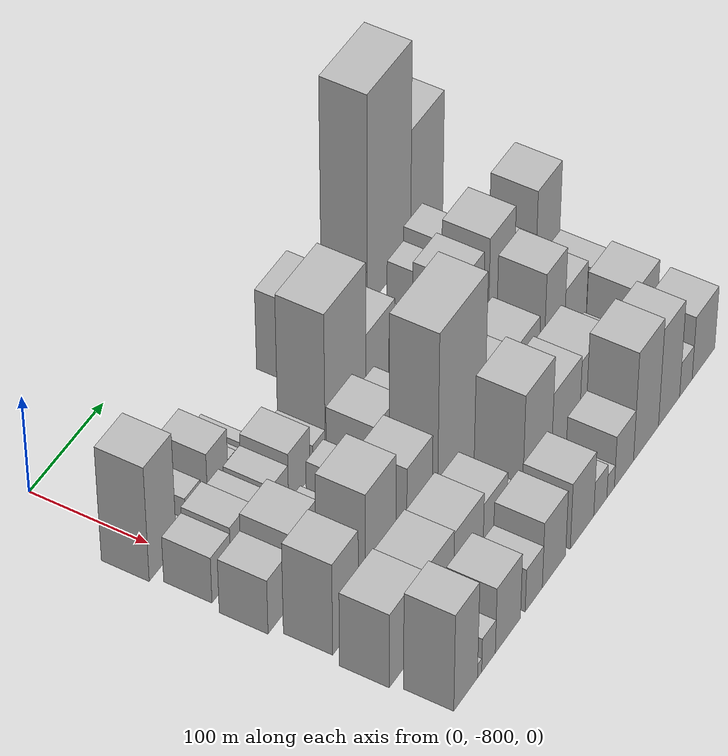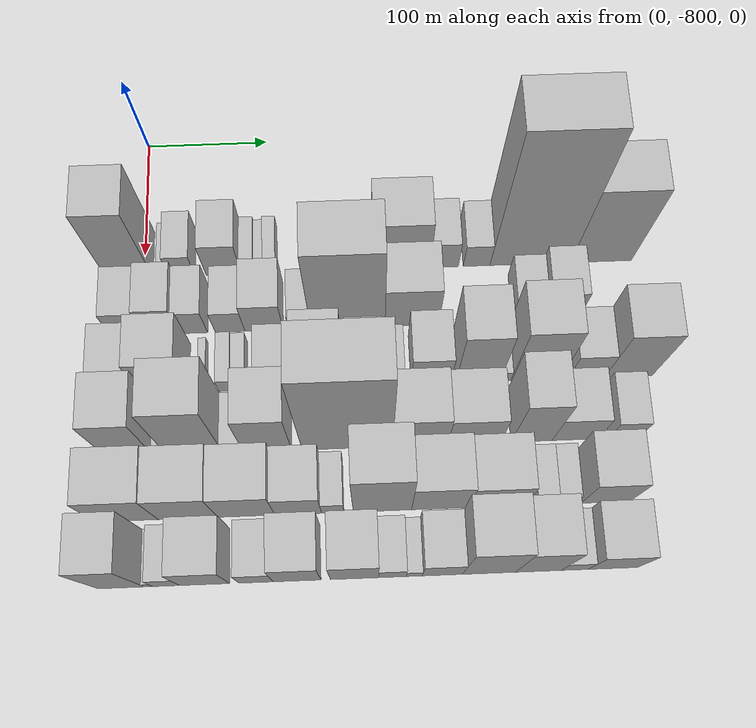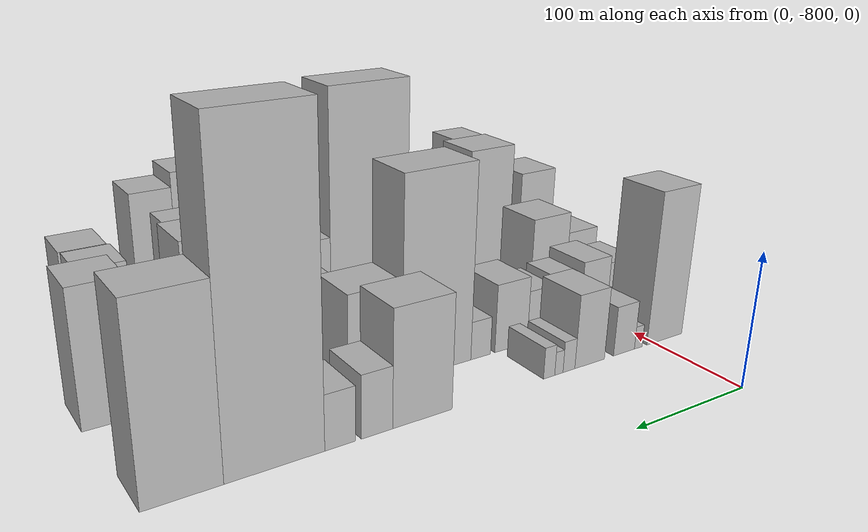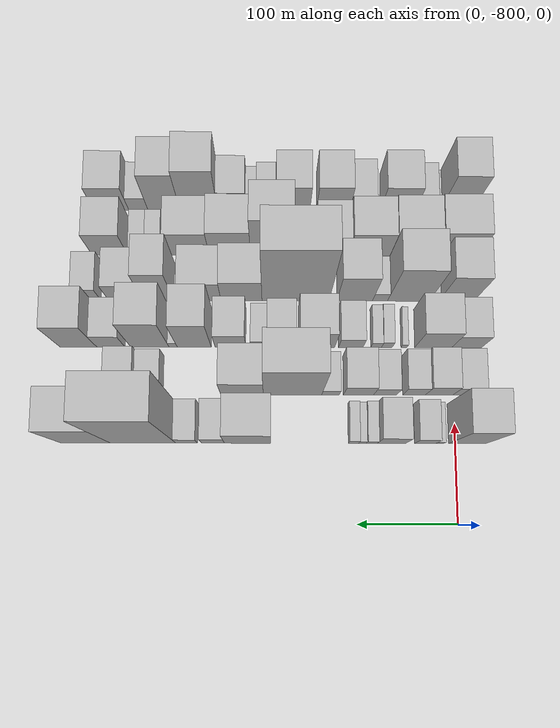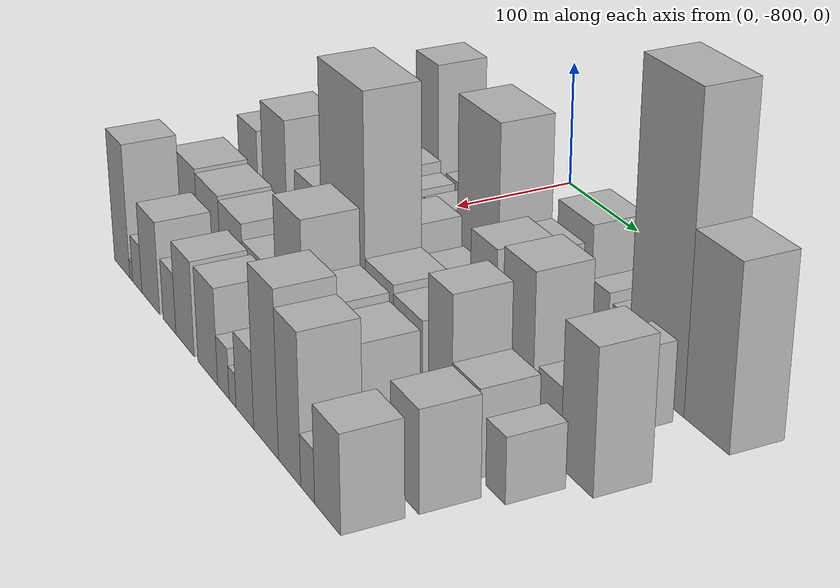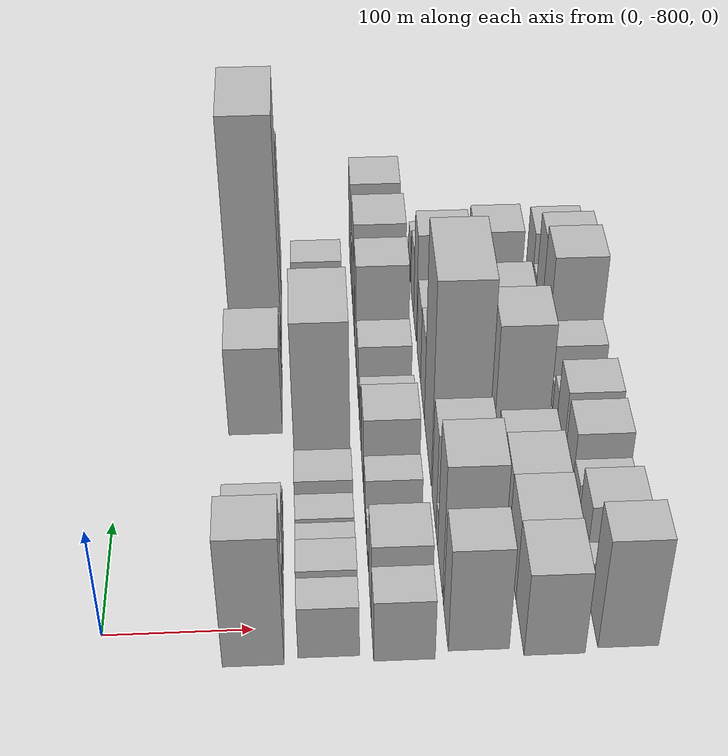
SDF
<sdf version="1.6">
 <world name="default">
  <model name="building_1">
   <static>1</static>
   <pose>100.0000 -811.4164 0 0.000000 0.000000 0.000000</pose>
   <link name="link">
    <pose>0 0 60.00 0 0 0</pose>
    <collision name="collision"><geometry><box><size>40.0000 37.1672 120.0000</size></box></geometry></collision>
    <visual name="visual">
     <cast_shadows>0</cast_shadows>
     <geometry><box><size>40.0000 37.1672 120.0000</size></box></geometry>
     <material>
      <script>
       <uri>model://HANNAS_wall/materials/scripts</uri>
       <uri>model://HANNAS_wall/materials/textures</uri>
       <name>vrc/HANNAS_wall</name>
      </script>
     </material>
    </visual>
   </link>
  </model>
  <model name="building_2">
   <static>1</static>
   <pose>100.0000 -783.8636 0 0.000000 0.000000 0.000000</pose>
   <link name="link">
    <pose>0 0 9.00 0 0 0</pose>
    <collision name="collision"><geometry><box><size>40.0000 7.9383 18.0000</size></box></geometry></collision>
    <visual name="visual">
     <cast_shadows>0</cast_shadows>
     <geometry><box><size>40.0000 7.9383 18.0000</size></box></geometry>
     <material>
      <script>
       <uri>model://HANNAS_wall/materials/scripts</uri>
       <uri>model://HANNAS_wall/materials/textures</uri>
       <name>vrc/HANNAS_wall</name>
      </script>
     </material>
    </visual>
   </link>
  </model>
  <model name="building_3">
   <static>1</static>
   <pose>100.0000 -769.3108 0 0.000000 0.000000 0.000000</pose>
   <link name="link">
    <pose>0 0 19.50 0 0 0</pose>
    <collision name="collision"><geometry><box><size>40.0000 21.1674 39.0000</size></box></geometry></collision>
    <visual name="visual">
     <cast_shadows>0</cast_shadows>
     <geometry><box><size>40.0000 21.1674 39.0000</size></box></geometry>
     <material>
      <script>
       <uri>model://HANNAS_wall/materials/scripts</uri>
       <uri>model://HANNAS_wall/materials/textures</uri>
       <name>vrc/HANNAS_wall</name>
      </script>
     </material>
    </visual>
   </link>
  </model>
  <model name="building_4">
   <static>1</static>
   <pose>100.0000 -735.4422 0 0.000000 0.000000 0.000000</pose>
   <link name="link">
    <pose>0 0 28.50 0 0 0</pose>
    <collision name="collision"><geometry><box><size>40.0000 28.5698 57.0000</size></box></geometry></collision>
    <visual name="visual">
     <cast_shadows>0</cast_shadows>
     <geometry><box><size>40.0000 28.5698 57.0000</size></box></geometry>
     <material>
      <script>
       <uri>model://HANNAS_wall/materials/scripts</uri>
       <uri>model://HANNAS_wall/materials/textures</uri>
       <name>vrc/HANNAS_wall</name>
      </script>
     </material>
    </visual>
   </link>
  </model>
  <model name="building_5">
   <static>1</static>
   <pose>100.0000 -715.5884 0 0.000000 0.000000 0.000000</pose>
   <link name="link">
    <pose>0 0 12.00 0 0 0</pose>
    <collision name="collision"><geometry><box><size>40.0000 11.1378 24.0000</size></box></geometry></collision>
    <visual name="visual">
     <cast_shadows>0</cast_shadows>
     <geometry><box><size>40.0000 11.1378 24.0000</size></box></geometry>
     <material>
      <script>
       <uri>model://HANNAS_wall/materials/scripts</uri>
       <uri>model://HANNAS_wall/materials/textures</uri>
       <name>vrc/HANNAS_wall</name>
      </script>
     </material>
    </visual>
   </link>
  </model>
  <model name="building_6">
   <static>1</static>
   <pose>100.0000 -706.1968 0 0.000000 0.000000 0.000000</pose>
   <link name="link">
    <pose>0 0 9.00 0 0 0</pose>
    <collision name="collision"><geometry><box><size>40.0000 7.6454 18.0000</size></box></geometry></collision>
    <visual name="visual">
     <cast_shadows>0</cast_shadows>
     <geometry><box><size>40.0000 7.6454 18.0000</size></box></geometry>
     <material>
      <script>
       <uri>model://HANNAS_wall/materials/scripts</uri>
       <uri>model://HANNAS_wall/materials/textures</uri>
       <name>vrc/HANNAS_wall</name>
      </script>
     </material>
    </visual>
   </link>
  </model>
  <model name="building_7">
   <static>1</static>
   <pose>100.0000 -697.2363 0 0.000000 0.000000 0.000000</pose>
   <link name="link">
    <pose>0 0 12.00 0 0 0</pose>
    <collision name="collision"><geometry><box><size>40.0000 10.2755 24.0000</size></box></geometry></collision>
    <visual name="visual">
     <cast_shadows>0</cast_shadows>
     <geometry><box><size>40.0000 10.2755 24.0000</size></box></geometry>
     <material>
      <script>
       <uri>model://HANNAS_wall/materials/scripts</uri>
       <uri>model://HANNAS_wall/materials/textures</uri>
       <name>vrc/HANNAS_wall</name>
      </script>
     </material>
    </visual>
   </link>
  </model>
  <model name="building_8">
   <static>1</static>
   <pose>100.0000 -590.8446 0 0.000000 0.000000 0.000000</pose>
   <link name="link">
    <pose>0 0 42.00 0 0 0</pose>
    <collision name="collision"><geometry><box><size>40.0000 46.1693 84.0000</size></box></geometry></collision>
    <visual name="visual">
     <cast_shadows>0</cast_shadows>
     <geometry><box><size>40.0000 46.1693 84.0000</size></box></geometry>
     <material>
      <script>
       <uri>model://HANNAS_wall/materials/scripts</uri>
       <uri>model://HANNAS_wall/materials/textures</uri>
       <name>vrc/HANNAS_wall</name>
      </script>
     </material>
    </visual>
   </link>
  </model>
  <model name="building_9">
   <static>1</static>
   <pose>100.0000 -556.2142 0 0.000000 0.000000 0.000000</pose>
   <link name="link">
    <pose>0 0 22.50 0 0 0</pose>
    <collision name="collision"><geometry><box><size>40.0000 23.0915 45.0000</size></box></geometry></collision>
    <visual name="visual">
     <cast_shadows>0</cast_shadows>
     <geometry><box><size>40.0000 23.0915 45.0000</size></box></geometry>
     <material>
      <script>
       <uri>model://HANNAS_wall/materials/scripts</uri>
       <uri>model://HANNAS_wall/materials/textures</uri>
       <name>vrc/HANNAS_wall</name>
      </script>
     </material>
    </visual>
   </link>
  </model>
  <model name="building_10">
   <static>1</static>
   <pose>100.0000 -529.7747 0 0.000000 0.000000 0.000000</pose>
   <link name="link">
    <pose>0 0 19.50 0 0 0</pose>
    <collision name="collision"><geometry><box><size>40.0000 21.7876 39.0000</size></box></geometry></collision>
    <visual name="visual">
     <cast_shadows>0</cast_shadows>
     <geometry><box><size>40.0000 21.7876 39.0000</size></box></geometry>
     <material>
      <script>
       <uri>model://HANNAS_wall/materials/scripts</uri>
       <uri>model://HANNAS_wall/materials/textures</uri>
       <name>vrc/HANNAS_wall</name>
      </script>
     </material>
    </visual>
   </link>
  </model>
  <model name="building_11">
   <static>1</static>
   <pose>100.0000 -485.8917 0 0.000000 0.000000 0.000000</pose>
   <link name="link">
    <pose>0 0 109.50 0 0 0</pose>
    <collision name="collision"><geometry><box><size>40.0000 65.9784 219.0000</size></box></geometry></collision>
    <visual name="visual">
     <cast_shadows>0</cast_shadows>
     <geometry><box><size>40.0000 65.9784 219.0000</size></box></geometry>
     <material>
      <script>
       <uri>model://HANNAS_wall/materials/scripts</uri>
       <uri>model://HANNAS_wall/materials/textures</uri>
       <name>vrc/HANNAS_wall</name>
      </script>
     </material>
    </visual>
   </link>
  </model>
  <model name="building_12">
   <static>1</static>
   <pose>100.0000 -427.9507 0 0.000000 0.000000 0.000000</pose>
   <link name="link">
    <pose>0 0 64.50 0 0 0</pose>
    <collision name="collision"><geometry><box><size>40.0000 49.9035 129.0000</size></box></geometry></collision>
    <visual name="visual">
     <cast_shadows>0</cast_shadows>
     <geometry><box><size>40.0000 49.9035 129.0000</size></box></geometry>
     <material>
      <script>
       <uri>model://HANNAS_wall/materials/scripts</uri>
       <uri>model://HANNAS_wall/materials/textures</uri>
       <name>vrc/HANNAS_wall</name>
      </script>
     </material>
    </visual>
   </link>
  </model>
  <model name="building_53">
   <static>1</static>
   <pose>149.0000 -811.8645 0 0.000000 0.000000 0.000000</pose>
   <link name="link">
    <pose>0 0 24.00 0 0 0</pose>
    <collision name="collision"><geometry><box><size>40.0000 26.2711 48.0000</size></box></geometry></collision>
    <visual name="visual">
     <cast_shadows>0</cast_shadows>
     <geometry><box><size>40.0000 26.2711 48.0000</size></box></geometry>
     <material>
      <script>
       <uri>model://HANNAS_wall/materials/scripts</uri>
       <uri>model://HANNAS_wall/materials/textures</uri>
       <name>vrc/HANNAS_wall</name>
      </script>
     </material>
    </visual>
   </link>
  </model>
  <model name="building_54">
   <static>1</static>
   <pose>149.0000 -784.7413 0 0.000000 0.000000 0.000000</pose>
   <link name="link">
    <pose>0 0 27.00 0 0 0</pose>
    <collision name="collision"><geometry><box><size>40.0000 27.9752 54.0000</size></box></geometry></collision>
    <visual name="visual">
     <cast_shadows>0</cast_shadows>
     <geometry><box><size>40.0000 27.9752 54.0000</size></box></geometry>
     <material>
      <script>
       <uri>model://HANNAS_wall/materials/scripts</uri>
       <uri>model://HANNAS_wall/materials/textures</uri>
       <name>vrc/HANNAS_wall</name>
      </script>
     </material>
    </visual>
   </link>
  </model>
  <model name="building_55">
   <static>1</static>
   <pose>149.0000 -759.3443 0 0.000000 0.000000 0.000000</pose>
   <link name="link">
    <pose>0 0 22.50 0 0 0</pose>
    <collision name="collision"><geometry><box><size>40.0000 22.8188 45.0000</size></box></geometry></collision>
    <visual name="visual">
     <cast_shadows>0</cast_shadows>
     <geometry><box><size>40.0000 22.8188 45.0000</size></box></geometry>
     <material>
      <script>
       <uri>model://HANNAS_wall/materials/scripts</uri>
       <uri>model://HANNAS_wall/materials/textures</uri>
       <name>vrc/HANNAS_wall</name>
      </script>
     </material>
    </visual>
   </link>
  </model>
  <model name="building_56">
   <static>1</static>
   <pose>149.0000 -730.1455 0 0.000000 0.000000 0.000000</pose>
   <link name="link">
    <pose>0 0 21.00 0 0 0</pose>
    <collision name="collision"><geometry><box><size>40.0000 23.5788 42.0000</size></box></geometry></collision>
    <visual name="visual">
     <cast_shadows>0</cast_shadows>
     <geometry><box><size>40.0000 23.5788 42.0000</size></box></geometry>
     <material>
      <script>
       <uri>model://HANNAS_wall/materials/scripts</uri>
       <uri>model://HANNAS_wall/materials/textures</uri>
       <name>vrc/HANNAS_wall</name>
      </script>
     </material>
    </visual>
   </link>
  </model>
  <model name="building_57">
   <static>1</static>
   <pose>149.0000 -703.0242 0 0.000000 0.000000 0.000000</pose>
   <link name="link">
    <pose>0 0 27.00 0 0 0</pose>
    <collision name="collision"><geometry><box><size>40.0000 30.6639 54.0000</size></box></geometry></collision>
    <visual name="visual">
     <cast_shadows>0</cast_shadows>
     <geometry><box><size>40.0000 30.6639 54.0000</size></box></geometry>
     <material>
      <script>
       <uri>model://HANNAS_wall/materials/scripts</uri>
       <uri>model://HANNAS_wall/materials/textures</uri>
       <name>vrc/HANNAS_wall</name>
      </script>
     </material>
    </visual>
   </link>
  </model>
  <model name="building_58">
   <static>1</static>
   <pose>149.0000 -674.7201 0 0.000000 0.000000 0.000000</pose>
   <link name="link">
    <pose>0 0 15.00 0 0 0</pose>
    <collision name="collision"><geometry><box><size>40.0000 17.9442 30.0000</size></box></geometry></collision>
    <visual name="visual">
     <cast_shadows>0</cast_shadows>
     <geometry><box><size>40.0000 17.9442 30.0000</size></box></geometry>
     <material>
      <script>
       <uri>model://HANNAS_wall/materials/scripts</uri>
       <uri>model://HANNAS_wall/materials/textures</uri>
       <name>vrc/HANNAS_wall</name>
      </script>
     </material>
    </visual>
   </link>
  </model>
  <model name="building_59">
   <static>1</static>
   <pose>149.0000 -636.1037 0 0.000000 0.000000 0.000000</pose>
   <link name="link">
    <pose>0 0 75.00 0 0 0</pose>
    <collision name="collision"><geometry><box><size>40.0000 59.2884 150.0000</size></box></geometry></collision>
    <visual name="visual">
     <cast_shadows>0</cast_shadows>
     <geometry><box><size>40.0000 59.2884 150.0000</size></box></geometry>
     <material>
      <script>
       <uri>model://HANNAS_wall/materials/scripts</uri>
       <uri>model://HANNAS_wall/materials/textures</uri>
       <name>vrc/HANNAS_wall</name>
      </script>
     </material>
    </visual>
   </link>
  </model>
  <model name="building_60">
   <static>1</static>
   <pose>149.0000 -584.9677 0 0.000000 0.000000 0.000000</pose>
   <link name="link">
    <pose>0 0 37.50 0 0 0</pose>
    <collision name="collision"><geometry><box><size>40.0000 42.9836 75.0000</size></box></geometry></collision>
    <visual name="visual">
     <cast_shadows>0</cast_shadows>
     <geometry><box><size>40.0000 42.9836 75.0000</size></box></geometry>
     <material>
      <script>
       <uri>model://HANNAS_wall/materials/scripts</uri>
       <uri>model://HANNAS_wall/materials/textures</uri>
       <name>vrc/HANNAS_wall</name>
      </script>
     </material>
    </visual>
   </link>
  </model>
  <model name="building_61">
   <static>1</static>
   <pose>149.0000 -492.4160 0 0.000000 0.000000 0.000000</pose>
   <link name="link">
    <pose>0 0 21.00 0 0 0</pose>
    <collision name="collision"><geometry><box><size>40.0000 24.7066 42.0000</size></box></geometry></collision>
    <visual name="visual">
     <cast_shadows>0</cast_shadows>
     <geometry><box><size>40.0000 24.7066 42.0000</size></box></geometry>
     <material>
      <script>
       <uri>model://HANNAS_wall/materials/scripts</uri>
       <uri>model://HANNAS_wall/materials/textures</uri>
       <name>vrc/HANNAS_wall</name>
      </script>
     </material>
    </visual>
   </link>
  </model>
  <model name="building_62">
   <static>1</static>
   <pose>149.0000 -465.7952 0 0.000000 0.000000 0.000000</pose>
   <link name="link">
    <pose>0 0 28.50 0 0 0</pose>
    <collision name="collision"><geometry><box><size>40.0000 28.5350 57.0000</size></box></geometry></collision>
    <visual name="visual">
     <cast_shadows>0</cast_shadows>
     <geometry><box><size>40.0000 28.5350 57.0000</size></box></geometry>
     <material>
      <script>
       <uri>model://HANNAS_wall/materials/scripts</uri>
       <uri>model://HANNAS_wall/materials/textures</uri>
       <name>vrc/HANNAS_wall</name>
      </script>
     </material>
    </visual>
   </link>
  </model>
  <model name="building_97">
   <static>1</static>
   <pose>198.0000 -814.6850 0 0.000000 0.000000 0.000000</pose>
   <link name="link">
    <pose>0 0 28.50 0 0 0</pose>
    <collision name="collision"><geometry><box><size>40.0000 30.6300 57.0000</size></box></geometry></collision>
    <visual name="visual">
     <cast_shadows>0</cast_shadows>
     <geometry><box><size>40.0000 30.6300 57.0000</size></box></geometry>
     <material>
      <script>
       <uri>model://HANNAS_wall/materials/scripts</uri>
       <uri>model://HANNAS_wall/materials/textures</uri>
       <name>vrc/HANNAS_wall</name>
      </script>
     </material>
    </visual>
   </link>
  </model>
  <model name="building_98">
   <static>1</static>
   <pose>198.0000 -780.4639 0 0.000000 0.000000 0.000000</pose>
   <link name="link">
    <pose>0 0 37.50 0 0 0</pose>
    <collision name="collision"><geometry><box><size>40.0000 37.8121 75.0000</size></box></geometry></collision>
    <visual name="visual">
     <cast_shadows>0</cast_shadows>
     <geometry><box><size>40.0000 37.8121 75.0000</size></box></geometry>
     <material>
      <script>
       <uri>model://HANNAS_wall/materials/scripts</uri>
       <uri>model://HANNAS_wall/materials/textures</uri>
       <name>vrc/HANNAS_wall</name>
      </script>
     </material>
    </visual>
   </link>
  </model>
  <model name="building_99">
   <static>1</static>
   <pose>198.0000 -750.4961 0 0.000000 0.000000 0.000000</pose>
   <link name="link">
    <pose>0 0 7.50 0 0 0</pose>
    <collision name="collision"><geometry><box><size>40.0000 6.1236 15.0000</size></box></geometry></collision>
    <visual name="visual">
     <cast_shadows>0</cast_shadows>
     <geometry><box><size>40.0000 6.1236 15.0000</size></box></geometry>
     <material>
      <script>
       <uri>model://HANNAS_wall/materials/scripts</uri>
       <uri>model://HANNAS_wall/materials/textures</uri>
       <name>vrc/HANNAS_wall</name>
      </script>
     </material>
    </visual>
   </link>
  </model>
  <model name="building_100">
   <static>1</static>
   <pose>198.0000 -732.8580 0 0.000000 0.000000 0.000000</pose>
   <link name="link">
    <pose>0 0 13.50 0 0 0</pose>
    <collision name="collision"><geometry><box><size>40.0000 11.1527 27.0000</size></box></geometry></collision>
    <visual name="visual">
     <cast_shadows>0</cast_shadows>
     <geometry><box><size>40.0000 11.1527 27.0000</size></box></geometry>
     <material>
      <script>
       <uri>model://HANNAS_wall/materials/scripts</uri>
       <uri>model://HANNAS_wall/materials/textures</uri>
       <name>vrc/HANNAS_wall</name>
      </script>
     </material>
    </visual>
   </link>
  </model>
  <model name="building_101">
   <static>1</static>
   <pose>198.0000 -721.8490 0 0.000000 0.000000 0.000000</pose>
   <link name="link">
    <pose>0 0 12.00 0 0 0</pose>
    <collision name="collision"><geometry><box><size>40.0000 10.8653 24.0000</size></box></geometry></collision>
    <visual name="visual">
     <cast_shadows>0</cast_shadows>
     <geometry><box><size>40.0000 10.8653 24.0000</size></box></geometry>
     <material>
      <script>
       <uri>model://HANNAS_wall/materials/scripts</uri>
       <uri>model://HANNAS_wall/materials/textures</uri>
       <name>vrc/HANNAS_wall</name>
      </script>
     </material>
    </visual>
   </link>
  </model>
  <model name="building_102">
   <static>1</static>
   <pose>198.0000 -695.9489 0 0.000000 0.000000 0.000000</pose>
   <link name="link">
    <pose>0 0 21.00 0 0 0</pose>
    <collision name="collision"><geometry><box><size>40.0000 24.9348 42.0000</size></box></geometry></collision>
    <visual name="visual">
     <cast_shadows>0</cast_shadows>
     <geometry><box><size>40.0000 24.9348 42.0000</size></box></geometry>
     <material>
      <script>
       <uri>model://HANNAS_wall/materials/scripts</uri>
       <uri>model://HANNAS_wall/materials/textures</uri>
       <name>vrc/HANNAS_wall</name>
      </script>
     </material>
    </visual>
   </link>
  </model>
  <model name="building_103">
   <static>1</static>
   <pose>198.0000 -660.8054 0 0.000000 0.000000 0.000000</pose>
   <link name="link">
    <pose>0 0 36.00 0 0 0</pose>
    <collision name="collision"><geometry><box><size>40.0000 37.3524 72.0000</size></box></geometry></collision>
    <visual name="visual">
     <cast_shadows>0</cast_shadows>
     <geometry><box><size>40.0000 37.3524 72.0000</size></box></geometry>
     <material>
      <script>
       <uri>model://HANNAS_wall/materials/scripts</uri>
       <uri>model://HANNAS_wall/materials/textures</uri>
       <name>vrc/HANNAS_wall</name>
      </script>
     </material>
    </visual>
   </link>
  </model>
  <model name="building_104">
   <static>1</static>
   <pose>198.0000 -624.7391 0 0.000000 0.000000 0.000000</pose>
   <link name="link">
    <pose>0 0 25.50 0 0 0</pose>
    <collision name="collision"><geometry><box><size>40.0000 28.7802 51.0000</size></box></geometry></collision>
    <visual name="visual">
     <cast_shadows>0</cast_shadows>
     <geometry><box><size>40.0000 28.7802 51.0000</size></box></geometry>
     <material>
      <script>
       <uri>model://HANNAS_wall/materials/scripts</uri>
       <uri>model://HANNAS_wall/materials/textures</uri>
       <name>vrc/HANNAS_wall</name>
      </script>
     </material>
    </visual>
   </link>
  </model>
  <model name="building_105">
   <static>1</static>
   <pose>198.0000 -601.8558 0 0.000000 0.000000 0.000000</pose>
   <link name="link">
    <pose>0 0 15.00 0 0 0</pose>
    <collision name="collision"><geometry><box><size>40.0000 16.9864 30.0000</size></box></geometry></collision>
    <visual name="visual">
     <cast_shadows>0</cast_shadows>
     <geometry><box><size>40.0000 16.9864 30.0000</size></box></geometry>
     <material>
      <script>
       <uri>model://HANNAS_wall/materials/scripts</uri>
       <uri>model://HANNAS_wall/materials/textures</uri>
       <name>vrc/HANNAS_wall</name>
      </script>
     </material>
    </visual>
   </link>
  </model>
  <model name="building_106">
   <static>1</static>
   <pose>198.0000 -572.7123 0 0.000000 0.000000 0.000000</pose>
   <link name="link">
    <pose>0 0 30.00 0 0 0</pose>
    <collision name="collision"><geometry><box><size>40.0000 31.3006 60.0000</size></box></geometry></collision>
    <visual name="visual">
     <cast_shadows>0</cast_shadows>
     <geometry><box><size>40.0000 31.3006 60.0000</size></box></geometry>
     <material>
      <script>
       <uri>model://HANNAS_wall/materials/scripts</uri>
       <uri>model://HANNAS_wall/materials/textures</uri>
       <name>vrc/HANNAS_wall</name>
      </script>
     </material>
    </visual>
   </link>
  </model>
  <model name="building_107">
   <static>1</static>
   <pose>198.0000 -535.6577 0 0.000000 0.000000 0.000000</pose>
   <link name="link">
    <pose>0 0 54.00 0 0 0</pose>
    <collision name="collision"><geometry><box><size>40.0000 34.8087 108.0000</size></box></geometry></collision>
    <visual name="visual">
     <cast_shadows>0</cast_shadows>
     <geometry><box><size>40.0000 34.8087 108.0000</size></box></geometry>
     <material>
      <script>
       <uri>model://HANNAS_wall/materials/scripts</uri>
       <uri>model://HANNAS_wall/materials/textures</uri>
       <name>vrc/HANNAS_wall</name>
      </script>
     </material>
    </visual>
   </link>
  </model>
  <model name="building_108">
   <static>1</static>
   <pose>198.0000 -514.0276 0 0.000000 0.000000 0.000000</pose>
   <link name="link">
    <pose>0 0 10.50 0 0 0</pose>
    <collision name="collision"><geometry><box><size>40.0000 8.4514 21.0000</size></box></geometry></collision>
    <visual name="visual">
     <cast_shadows>0</cast_shadows>
     <geometry><box><size>40.0000 8.4514 21.0000</size></box></geometry>
     <material>
      <script>
       <uri>model://HANNAS_wall/materials/scripts</uri>
       <uri>model://HANNAS_wall/materials/textures</uri>
       <name>vrc/HANNAS_wall</name>
      </script>
     </material>
    </visual>
   </link>
  </model>
  <model name="building_109">
   <static>1</static>
   <pose>198.0000 -490.1910 0 0.000000 0.000000 0.000000</pose>
   <link name="link">
    <pose>0 0 57.00 0 0 0</pose>
    <collision name="collision"><geometry><box><size>40.0000 39.2218 114.0000</size></box></geometry></collision>
    <visual name="visual">
     <cast_shadows>0</cast_shadows>
     <geometry><box><size>40.0000 39.2218 114.0000</size></box></geometry>
     <material>
      <script>
       <uri>model://HANNAS_wall/materials/scripts</uri>
       <uri>model://HANNAS_wall/materials/textures</uri>
       <name>vrc/HANNAS_wall</name>
      </script>
     </material>
    </visual>
   </link>
  </model>
  <model name="building_110">
   <static>1</static>
   <pose>198.0000 -450.1724 0 0.000000 0.000000 0.000000</pose>
   <link name="link">
    <pose>0 0 27.00 0 0 0</pose>
    <collision name="collision"><geometry><box><size>40.0000 28.8155 54.0000</size></box></geometry></collision>
    <visual name="visual">
     <cast_shadows>0</cast_shadows>
     <geometry><box><size>40.0000 28.8155 54.0000</size></box></geometry>
     <material>
      <script>
       <uri>model://HANNAS_wall/materials/scripts</uri>
       <uri>model://HANNAS_wall/materials/textures</uri>
       <name>vrc/HANNAS_wall</name>
      </script>
     </material>
    </visual>
   </link>
  </model>
  <model name="building_111">
   <static>1</static>
   <pose>198.0000 -416.8391 0 0.000000 0.000000 0.000000</pose>
   <link name="link">
    <pose>0 0 49.50 0 0 0</pose>
    <collision name="collision"><geometry><box><size>40.0000 37.8511 99.0000</size></box></geometry></collision>
    <visual name="visual">
     <cast_shadows>0</cast_shadows>
     <geometry><box><size>40.0000 37.8511 99.0000</size></box></geometry>
     <material>
      <script>
       <uri>model://HANNAS_wall/materials/scripts</uri>
       <uri>model://HANNAS_wall/materials/textures</uri>
       <name>vrc/HANNAS_wall</name>
      </script>
     </material>
    </visual>
   </link>
  </model>
  <model name="building_146">
   <static>1</static>
   <pose>247.0000 -805.9222 0 0.000000 0.000000 0.000000</pose>
   <link name="link">
    <pose>0 0 48.00 0 0 0</pose>
    <collision name="collision"><geometry><box><size>40.0000 36.1556 96.0000</size></box></geometry></collision>
    <visual name="visual">
     <cast_shadows>0</cast_shadows>
     <geometry><box><size>40.0000 36.1556 96.0000</size></box></geometry>
     <material>
      <script>
       <uri>model://HANNAS_wall/materials/scripts</uri>
       <uri>model://HANNAS_wall/materials/textures</uri>
       <name>vrc/HANNAS_wall</name>
      </script>
     </material>
    </visual>
   </link>
  </model>
  <model name="building_147">
   <static>1</static>
   <pose>247.0000 -784.3652 0 0.000000 0.000000 0.000000</pose>
   <link name="link">
    <pose>0 0 7.50 0 0 0</pose>
    <collision name="collision"><geometry><box><size>40.0000 6.9583 15.0000</size></box></geometry></collision>
    <visual name="visual">
     <cast_shadows>0</cast_shadows>
     <geometry><box><size>40.0000 6.9583 15.0000</size></box></geometry>
     <material>
      <script>
       <uri>model://HANNAS_wall/materials/scripts</uri>
       <uri>model://HANNAS_wall/materials/textures</uri>
       <name>vrc/HANNAS_wall</name>
      </script>
     </material>
    </visual>
   </link>
  </model>
  <model name="building_148">
   <static>1</static>
   <pose>247.0000 -756.2472 0 0.000000 0.000000 0.000000</pose>
   <link name="link">
    <pose>0 0 61.50 0 0 0</pose>
    <collision name="collision"><geometry><box><size>40.0000 43.2778 123.0000</size></box></geometry></collision>
    <visual name="visual">
     <cast_shadows>0</cast_shadows>
     <geometry><box><size>40.0000 43.2778 123.0000</size></box></geometry>
     <material>
      <script>
       <uri>model://HANNAS_wall/materials/scripts</uri>
       <uri>model://HANNAS_wall/materials/textures</uri>
       <name>vrc/HANNAS_wall</name>
      </script>
     </material>
    </visual>
   </link>
  </model>
  <model name="building_149">
   <static>1</static>
   <pose>247.0000 -726.8591 0 0.000000 0.000000 0.000000</pose>
   <link name="link">
    <pose>0 0 15.00 0 0 0</pose>
    <collision name="collision"><geometry><box><size>40.0000 15.4983 30.0000</size></box></geometry></collision>
    <visual name="visual">
     <cast_shadows>0</cast_shadows>
     <geometry><box><size>40.0000 15.4983 30.0000</size></box></geometry>
     <material>
      <script>
       <uri>model://HANNAS_wall/materials/scripts</uri>
       <uri>model://HANNAS_wall/materials/textures</uri>
       <name>vrc/HANNAS_wall</name>
      </script>
     </material>
    </visual>
   </link>
  </model>
  <model name="building_150">
   <static>1</static>
   <pose>247.0000 -700.6596 0 0.000000 0.000000 0.000000</pose>
   <link name="link">
    <pose>0 0 46.50 0 0 0</pose>
    <collision name="collision"><geometry><box><size>40.0000 36.9006 93.0000</size></box></geometry></collision>
    <visual name="visual">
     <cast_shadows>0</cast_shadows>
     <geometry><box><size>40.0000 36.9006 93.0000</size></box></geometry>
     <material>
      <script>
       <uri>model://HANNAS_wall/materials/scripts</uri>
       <uri>model://HANNAS_wall/materials/textures</uri>
       <name>vrc/HANNAS_wall</name>
      </script>
     </material>
    </visual>
   </link>
  </model>
  <model name="building_151">
   <static>1</static>
   <pose>247.0000 -639.4867 0 0.000000 0.000000 0.000000</pose>
   <link name="link">
    <pose>0 0 94.50 0 0 0</pose>
    <collision name="collision"><geometry><box><size>40.0000 69.4453 189.0000</size></box></geometry></collision>
    <visual name="visual">
     <cast_shadows>0</cast_shadows>
     <geometry><box><size>40.0000 69.4453 189.0000</size></box></geometry>
     <material>
      <script>
       <uri>model://HANNAS_wall/materials/scripts</uri>
       <uri>model://HANNAS_wall/materials/textures</uri>
       <name>vrc/HANNAS_wall</name>
      </script>
     </material>
    </visual>
   </link>
  </model>
  <model name="building_152">
   <static>1</static>
   <pose>247.0000 -583.6456 0 0.000000 0.000000 0.000000</pose>
   <link name="link">
    <pose>0 0 37.50 0 0 0</pose>
    <collision name="collision"><geometry><box><size>40.0000 42.2369 75.0000</size></box></geometry></collision>
    <visual name="visual">
     <cast_shadows>0</cast_shadows>
     <geometry><box><size>40.0000 42.2369 75.0000</size></box></geometry>
     <material>
      <script>
       <uri>model://HANNAS_wall/materials/scripts</uri>
       <uri>model://HANNAS_wall/materials/textures</uri>
       <name>vrc/HANNAS_wall</name>
      </script>
     </material>
    </visual>
   </link>
  </model>
  <model name="building_153">
   <static>1</static>
   <pose>247.0000 -542.0713 0 0.000000 0.000000 0.000000</pose>
   <link name="link">
    <pose>0 0 34.50 0 0 0</pose>
    <collision name="collision"><geometry><box><size>40.0000 40.9116 69.0000</size></box></geometry></collision>
    <visual name="visual">
     <cast_shadows>0</cast_shadows>
     <geometry><box><size>40.0000 40.9116 69.0000</size></box></geometry>
     <material>
      <script>
       <uri>model://HANNAS_wall/materials/scripts</uri>
       <uri>model://HANNAS_wall/materials/textures</uri>
       <name>vrc/HANNAS_wall</name>
      </script>
     </material>
    </visual>
   </link>
  </model>
  <model name="building_154">
   <static>1</static>
   <pose>247.0000 -497.6860 0 0.000000 0.000000 0.000000</pose>
   <link name="link">
    <pose>0 0 52.50 0 0 0</pose>
    <collision name="collision"><geometry><box><size>40.0000 31.8590 105.0000</size></box></geometry></collision>
    <visual name="visual">
     <cast_shadows>0</cast_shadows>
     <geometry><box><size>40.0000 31.8590 105.0000</size></box></geometry>
     <material>
      <script>
       <uri>model://HANNAS_wall/materials/scripts</uri>
       <uri>model://HANNAS_wall/materials/textures</uri>
       <name>vrc/HANNAS_wall</name>
      </script>
     </material>
    </visual>
   </link>
  </model>
  <model name="building_155">
   <static>1</static>
   <pose>247.0000 -464.0404 0 0.000000 0.000000 0.000000</pose>
   <link name="link">
    <pose>0 0 30.00 0 0 0</pose>
    <collision name="collision"><geometry><box><size>40.0000 35.4321 60.0000</size></box></geometry></collision>
    <visual name="visual">
     <cast_shadows>0</cast_shadows>
     <geometry><box><size>40.0000 35.4321 60.0000</size></box></geometry>
     <material>
      <script>
       <uri>model://HANNAS_wall/materials/scripts</uri>
       <uri>model://HANNAS_wall/materials/textures</uri>
       <name>vrc/HANNAS_wall</name>
      </script>
     </material>
    </visual>
   </link>
  </model>
  <model name="building_156">
   <static>1</static>
   <pose>247.0000 -426.2289 0 0.000000 0.000000 0.000000</pose>
   <link name="link">
    <pose>0 0 22.50 0 0 0</pose>
    <collision name="collision"><geometry><box><size>40.0000 24.1910 45.0000</size></box></geometry></collision>
    <visual name="visual">
     <cast_shadows>0</cast_shadows>
     <geometry><box><size>40.0000 24.1910 45.0000</size></box></geometry>
     <material>
      <script>
       <uri>model://HANNAS_wall/materials/scripts</uri>
       <uri>model://HANNAS_wall/materials/textures</uri>
       <name>vrc/HANNAS_wall</name>
      </script>
     </material>
    </visual>
   </link>
  </model>
  <model name="building_194">
   <static>1</static>
   <pose>296.0000 -806.6012 0 0.000000 0.000000 0.000000</pose>
   <link name="link">
    <pose>0 0 39.00 0 0 0</pose>
    <collision name="collision"><geometry><box><size>40.0000 46.7976 78.0000</size></box></geometry></collision>
    <visual name="visual">
     <cast_shadows>0</cast_shadows>
     <geometry><box><size>40.0000 46.7976 78.0000</size></box></geometry>
     <material>
      <script>
       <uri>model://HANNAS_wall/materials/scripts</uri>
       <uri>model://HANNAS_wall/materials/textures</uri>
       <name>vrc/HANNAS_wall</name>
      </script>
     </material>
    </visual>
   </link>
  </model>
  <model name="building_195">
   <static>1</static>
   <pose>296.0000 -760.8785 0 0.000000 0.000000 0.000000</pose>
   <link name="link">
    <pose>0 0 37.50 0 0 0</pose>
    <collision name="collision"><geometry><box><size>40.0000 44.6478 75.0000</size></box></geometry></collision>
    <visual name="visual">
     <cast_shadows>0</cast_shadows>
     <geometry><box><size>40.0000 44.6478 75.0000</size></box></geometry>
     <material>
      <script>
       <uri>model://HANNAS_wall/materials/scripts</uri>
       <uri>model://HANNAS_wall/materials/textures</uri>
       <name>vrc/HANNAS_wall</name>
      </script>
     </material>
    </visual>
   </link>
  </model>
  <model name="building_196">
   <static>1</static>
   <pose>296.0000 -716.9735 0 0.000000 0.000000 0.000000</pose>
   <link name="link">
    <pose>0 0 36.00 0 0 0</pose>
    <collision name="collision"><geometry><box><size>40.0000 43.1622 72.0000</size></box></geometry></collision>
    <visual name="visual">
     <cast_shadows>0</cast_shadows>
     <geometry><box><size>40.0000 43.1622 72.0000</size></box></geometry>
     <material>
      <script>
       <uri>model://HANNAS_wall/materials/scripts</uri>
       <uri>model://HANNAS_wall/materials/textures</uri>
       <name>vrc/HANNAS_wall</name>
      </script>
     </material>
    </visual>
   </link>
  </model>
  <model name="building_197">
   <static>1</static>
   <pose>296.0000 -677.9012 0 0.000000 0.000000 0.000000</pose>
   <link name="link">
    <pose>0 0 30.00 0 0 0</pose>
    <collision name="collision"><geometry><box><size>40.0000 34.9824 60.0000</size></box></geometry></collision>
    <visual name="visual">
     <cast_shadows>0</cast_shadows>
     <geometry><box><size>40.0000 34.9824 60.0000</size></box></geometry>
     <material>
      <script>
       <uri>model://HANNAS_wall/materials/scripts</uri>
       <uri>model://HANNAS_wall/materials/textures</uri>
       <name>vrc/HANNAS_wall</name>
      </script>
     </material>
    </visual>
   </link>
  </model>
  <model name="building_198">
   <static>1</static>
   <pose>296.0000 -651.9882 0 0.000000 0.000000 0.000000</pose>
   <link name="link">
    <pose>0 0 16.50 0 0 0</pose>
    <collision name="collision"><geometry><box><size>40.0000 16.8435 33.0000</size></box></geometry></collision>
    <visual name="visual">
     <cast_shadows>0</cast_shadows>
     <geometry><box><size>40.0000 16.8435 33.0000</size></box></geometry>
     <material>
      <script>
       <uri>model://HANNAS_wall/materials/scripts</uri>
       <uri>model://HANNAS_wall/materials/textures</uri>
       <name>vrc/HANNAS_wall</name>
      </script>
     </material>
    </visual>
   </link>
  </model>
  <model name="building_199">
   <static>1</static>
   <pose>296.0000 -614.6166 0 0.000000 0.000000 0.000000</pose>
   <link name="link">
    <pose>0 0 58.50 0 0 0</pose>
    <collision name="collision"><geometry><box><size>40.0000 43.8996 117.0000</size></box></geometry></collision>
    <visual name="visual">
     <cast_shadows>0</cast_shadows>
     <geometry><box><size>40.0000 43.8996 117.0000</size></box></geometry>
     <material>
      <script>
       <uri>model://HANNAS_wall/materials/scripts</uri>
       <uri>model://HANNAS_wall/materials/textures</uri>
       <name>vrc/HANNAS_wall</name>
      </script>
     </material>
    </visual>
   </link>
  </model>
  <model name="building_200">
   <static>1</static>
   <pose>296.0000 -571.0385 0 0.000000 0.000000 0.000000</pose>
   <link name="link">
    <pose>0 0 39.00 0 0 0</pose>
    <collision name="collision"><geometry><box><size>40.0000 43.2566 78.0000</size></box></geometry></collision>
    <visual name="visual">
     <cast_shadows>0</cast_shadows>
     <geometry><box><size>40.0000 43.2566 78.0000</size></box></geometry>
     <material>
      <script>
       <uri>model://HANNAS_wall/materials/scripts</uri>
       <uri>model://HANNAS_wall/materials/textures</uri>
       <name>vrc/HANNAS_wall</name>
      </script>
     </material>
    </visual>
   </link>
  </model>
  <model name="building_201">
   <static>1</static>
   <pose>296.0000 -528.1082 0 0.000000 0.000000 0.000000</pose>
   <link name="link">
    <pose>0 0 36.00 0 0 0</pose>
    <collision name="collision"><geometry><box><size>40.0000 42.6042 72.0000</size></box></geometry></collision>
    <visual name="visual">
     <cast_shadows>0</cast_shadows>
     <geometry><box><size>40.0000 42.6042 72.0000</size></box></geometry>
     <material>
      <script>
       <uri>model://HANNAS_wall/materials/scripts</uri>
       <uri>model://HANNAS_wall/materials/textures</uri>
       <name>vrc/HANNAS_wall</name>
      </script>
     </material>
    </visual>
   </link>
  </model>
  <model name="building_202">
   <static>1</static>
   <pose>296.0000 -492.6786 0 0.000000 0.000000 0.000000</pose>
   <link name="link">
    <pose>0 0 15.00 0 0 0</pose>
    <collision name="collision"><geometry><box><size>40.0000 16.2548 30.0000</size></box></geometry></collision>
    <visual name="visual">
     <cast_shadows>0</cast_shadows>
     <geometry><box><size>40.0000 16.2548 30.0000</size></box></geometry>
     <material>
      <script>
       <uri>model://HANNAS_wall/materials/scripts</uri>
       <uri>model://HANNAS_wall/materials/textures</uri>
       <name>vrc/HANNAS_wall</name>
      </script>
     </material>
    </visual>
   </link>
  </model>
  <model name="building_203">
   <static>1</static>
   <pose>296.0000 -476.3474 0 0.000000 0.000000 0.000000</pose>
   <link name="link">
    <pose>0 0 15.00 0 0 0</pose>
    <collision name="collision"><geometry><box><size>40.0000 16.4077 30.0000</size></box></geometry></collision>
    <visual name="visual">
     <cast_shadows>0</cast_shadows>
     <geometry><box><size>40.0000 16.4077 30.0000</size></box></geometry>
     <material>
      <script>
       <uri>model://HANNAS_wall/materials/scripts</uri>
       <uri>model://HANNAS_wall/materials/textures</uri>
       <name>vrc/HANNAS_wall</name>
      </script>
     </material>
    </visual>
   </link>
  </model>
  <model name="building_204">
   <static>1</static>
   <pose>296.0000 -445.6043 0 0.000000 0.000000 0.000000</pose>
   <link name="link">
    <pose>0 0 34.50 0 0 0</pose>
    <collision name="collision"><geometry><box><size>40.0000 37.0785 69.0000</size></box></geometry></collision>
    <visual name="visual">
     <cast_shadows>0</cast_shadows>
     <geometry><box><size>40.0000 37.0785 69.0000</size></box></geometry>
     <material>
      <script>
       <uri>model://HANNAS_wall/materials/scripts</uri>
       <uri>model://HANNAS_wall/materials/textures</uri>
       <name>vrc/HANNAS_wall</name>
      </script>
     </material>
    </visual>
   </link>
  </model>
  <model name="building_239">
   <static>1</static>
   <pose>345.0000 -809.0305 0 0.000000 0.000000 0.000000</pose>
   <link name="link">
    <pose>0 0 51.00 0 0 0</pose>
    <collision name="collision"><geometry><box><size>40.0000 33.9389 102.0000</size></box></geometry></collision>
    <visual name="visual">
     <cast_shadows>0</cast_shadows>
     <geometry><box><size>40.0000 33.9389 102.0000</size></box></geometry>
     <material>
      <script>
       <uri>model://HANNAS_wall/materials/scripts</uri>
       <uri>model://HANNAS_wall/materials/textures</uri>
       <name>vrc/HANNAS_wall</name>
      </script>
     </material>
    </visual>
   </link>
  </model>
  <model name="building_240">
   <static>1</static>
   <pose>345.0000 -789.0546 0 0.000000 0.000000 0.000000</pose>
   <link name="link">
    <pose>0 0 7.50 0 0 0</pose>
    <collision name="collision"><geometry><box><size>40.0000 6.0129 15.0000</size></box></geometry></collision>
    <visual name="visual">
     <cast_shadows>0</cast_shadows>
     <geometry><box><size>40.0000 6.0129 15.0000</size></box></geometry>
     <material>
      <script>
       <uri>model://HANNAS_wall/materials/scripts</uri>
       <uri>model://HANNAS_wall/materials/textures</uri>
       <name>vrc/HANNAS_wall</name>
      </script>
     </material>
    </visual>
   </link>
  </model>
  <model name="building_241">
   <static>1</static>
   <pose>345.0000 -776.1161 0 0.000000 0.000000 0.000000</pose>
   <link name="link">
    <pose>0 0 18.00 0 0 0</pose>
    <collision name="collision"><geometry><box><size>40.0000 19.8642 36.0000</size></box></geometry></collision>
    <visual name="visual">
     <cast_shadows>0</cast_shadows>
     <geometry><box><size>40.0000 19.8642 36.0000</size></box></geometry>
     <material>
      <script>
       <uri>model://HANNAS_wall/materials/scripts</uri>
       <uri>model://HANNAS_wall/materials/textures</uri>
       <name>vrc/HANNAS_wall</name>
      </script>
     </material>
    </visual>
   </link>
  </model>
  <model name="building_242">
   <static>1</static>
   <pose>345.0000 -747.7777 0 0.000000 0.000000 0.000000</pose>
   <link name="link">
    <pose>0 0 34.50 0 0 0</pose>
    <collision name="collision"><geometry><box><size>40.0000 36.8125 69.0000</size></box></geometry></collision>
    <visual name="visual">
     <cast_shadows>0</cast_shadows>
     <geometry><box><size>40.0000 36.8125 69.0000</size></box></geometry>
     <material>
      <script>
       <uri>model://HANNAS_wall/materials/scripts</uri>
       <uri>model://HANNAS_wall/materials/textures</uri>
       <name>vrc/HANNAS_wall</name>
      </script>
     </material>
    </visual>
   </link>
  </model>
  <model name="building_243">
   <static>1</static>
   <pose>345.0000 -709.6846 0 0.000000 0.000000 0.000000</pose>
   <link name="link">
    <pose>0 0 22.50 0 0 0</pose>
    <collision name="collision"><geometry><box><size>40.0000 25.3738 45.0000</size></box></geometry></collision>
    <visual name="visual">
     <cast_shadows>0</cast_shadows>
     <geometry><box><size>40.0000 25.3738 45.0000</size></box></geometry>
     <material>
      <script>
       <uri>model://HANNAS_wall/materials/scripts</uri>
       <uri>model://HANNAS_wall/materials/textures</uri>
       <name>vrc/HANNAS_wall</name>
      </script>
     </material>
    </visual>
   </link>
  </model>
  <model name="building_244">
   <static>1</static>
   <pose>345.0000 -679.4750 0 0.000000 0.000000 0.000000</pose>
   <link name="link">
    <pose>0 0 34.50 0 0 0</pose>
    <collision name="collision"><geometry><box><size>40.0000 35.0454 69.0000</size></box></geometry></collision>
    <visual name="visual">
     <cast_shadows>0</cast_shadows>
     <geometry><box><size>40.0000 35.0454 69.0000</size></box></geometry>
     <material>
      <script>
       <uri>model://HANNAS_wall/materials/scripts</uri>
       <uri>model://HANNAS_wall/materials/textures</uri>
       <name>vrc/HANNAS_wall</name>
      </script>
     </material>
    </visual>
   </link>
  </model>
  <model name="building_245">
   <static>1</static>
   <pose>345.0000 -637.0829 0 0.000000 0.000000 0.000000</pose>
   <link name="link">
    <pose>0 0 34.50 0 0 0</pose>
    <collision name="collision"><geometry><box><size>40.0000 35.7389 69.0000</size></box></geometry></collision>
    <visual name="visual">
     <cast_shadows>0</cast_shadows>
     <geometry><box><size>40.0000 35.7389 69.0000</size></box></geometry>
     <material>
      <script>
       <uri>model://HANNAS_wall/materials/scripts</uri>
       <uri>model://HANNAS_wall/materials/textures</uri>
       <name>vrc/HANNAS_wall</name>
      </script>
     </material>
    </visual>
   </link>
  </model>
  <model name="building_246">
   <static>1</static>
   <pose>345.0000 -609.0784 0 0.000000 0.000000 0.000000</pose>
   <link name="link">
    <pose>0 0 18.00 0 0 0</pose>
    <collision name="collision"><geometry><box><size>40.0000 20.2702 36.0000</size></box></geometry></collision>
    <visual name="visual">
     <cast_shadows>0</cast_shadows>
     <geometry><box><size>40.0000 20.2702 36.0000</size></box></geometry>
     <material>
      <script>
       <uri>model://HANNAS_wall/materials/scripts</uri>
       <uri>model://HANNAS_wall/materials/textures</uri>
       <name>vrc/HANNAS_wall</name>
      </script>
     </material>
    </visual>
   </link>
  </model>
  <model name="building_247">
   <static>1</static>
   <pose>345.0000 -593.1027 0 0.000000 0.000000 0.000000</pose>
   <link name="link">
    <pose>0 0 12.00 0 0 0</pose>
    <collision name="collision"><geometry><box><size>40.0000 11.6812 24.0000</size></box></geometry></collision>
    <visual name="visual">
     <cast_shadows>0</cast_shadows>
     <geometry><box><size>40.0000 11.6812 24.0000</size></box></geometry>
     <material>
      <script>
       <uri>model://HANNAS_wall/materials/scripts</uri>
       <uri>model://HANNAS_wall/materials/textures</uri>
       <name>vrc/HANNAS_wall</name>
      </script>
     </material>
    </visual>
   </link>
  </model>
  <model name="building_248">
   <static>1</static>
   <pose>345.0000 -572.3802 0 0.000000 0.000000 0.000000</pose>
   <link name="link">
    <pose>0 0 27.00 0 0 0</pose>
    <collision name="collision"><geometry><box><size>40.0000 29.7636 54.0000</size></box></geometry></collision>
    <visual name="visual">
     <cast_shadows>0</cast_shadows>
     <geometry><box><size>40.0000 29.7636 54.0000</size></box></geometry>
     <material>
      <script>
       <uri>model://HANNAS_wall/materials/scripts</uri>
       <uri>model://HANNAS_wall/materials/textures</uri>
       <name>vrc/HANNAS_wall</name>
      </script>
     </material>
    </visual>
   </link>
  </model>
  <model name="building_249">
   <static>1</static>
   <pose>345.0000 -537.7580 0 0.000000 0.000000 0.000000</pose>
   <link name="link">
    <pose>0 0 57.00 0 0 0</pose>
    <collision name="collision"><geometry><box><size>40.0000 39.4808 114.0000</size></box></geometry></collision>
    <visual name="visual">
     <cast_shadows>0</cast_shadows>
     <geometry><box><size>40.0000 39.4808 114.0000</size></box></geometry>
     <material>
      <script>
       <uri>model://HANNAS_wall/materials/scripts</uri>
       <uri>model://HANNAS_wall/materials/textures</uri>
       <name>vrc/HANNAS_wall</name>
      </script>
     </material>
    </visual>
   </link>
  </model>
  <model name="building_250">
   <static>1</static>
   <pose>345.0000 -501.0992 0 0.000000 0.000000 0.000000</pose>
   <link name="link">
    <pose>0 0 51.00 0 0 0</pose>
    <collision name="collision"><geometry><box><size>40.0000 33.8368 102.0000</size></box></geometry></collision>
    <visual name="visual">
     <cast_shadows>0</cast_shadows>
     <geometry><box><size>40.0000 33.8368 102.0000</size></box></geometry>
     <material>
      <script>
       <uri>model://HANNAS_wall/materials/scripts</uri>
       <uri>model://HANNAS_wall/materials/textures</uri>
       <name>vrc/HANNAS_wall</name>
      </script>
     </material>
    </visual>
   </link>
  </model>
  <model name="building_251">
   <static>1</static>
   <pose>345.0000 -474.0632 0 0.000000 0.000000 0.000000</pose>
   <link name="link">
    <pose>0 0 18.00 0 0 0</pose>
    <collision name="collision"><geometry><box><size>40.0000 20.2353 36.0000</size></box></geometry></collision>
    <visual name="visual">
     <cast_shadows>0</cast_shadows>
     <geometry><box><size>40.0000 20.2353 36.0000</size></box></geometry>
     <material>
      <script>
       <uri>model://HANNAS_wall/materials/scripts</uri>
       <uri>model://HANNAS_wall/materials/textures</uri>
       <name>vrc/HANNAS_wall</name>
      </script>
     </material>
    </visual>
   </link>
  </model>
  <model name="building_252">
   <static>1</static>
   <pose>345.0000 -445.5394 0 0.000000 0.000000 0.000000</pose>
   <link name="link">
    <pose>0 0 33.00 0 0 0</pose>
    <collision name="collision"><geometry><box><size>40.0000 36.8124 66.0000</size></box></geometry></collision>
    <visual name="visual">
     <cast_shadows>0</cast_shadows>
     <geometry><box><size>40.0000 36.8124 66.0000</size></box></geometry>
     <material>
      <script>
       <uri>model://HANNAS_wall/materials/scripts</uri>
       <uri>model://HANNAS_wall/materials/textures</uri>
       <name>vrc/HANNAS_wall</name>
      </script>
     </material>
    </visual>
   </link>
  </model>
 </world>
</sdf>
